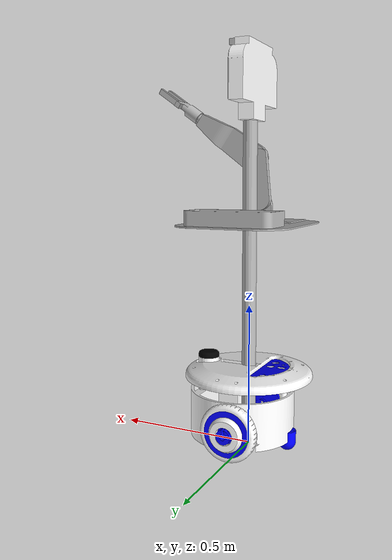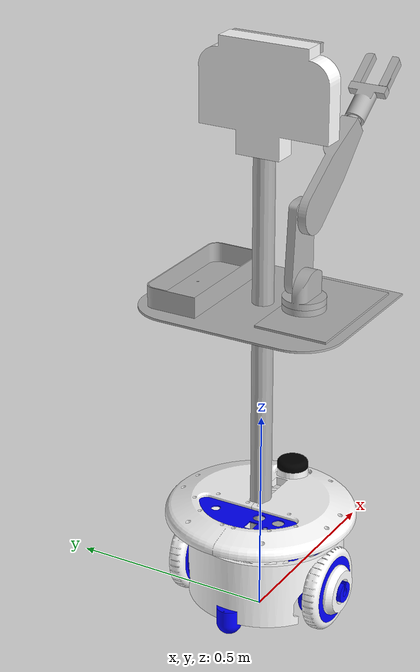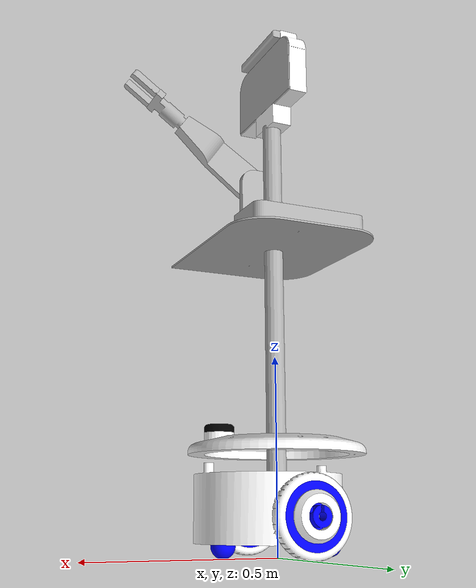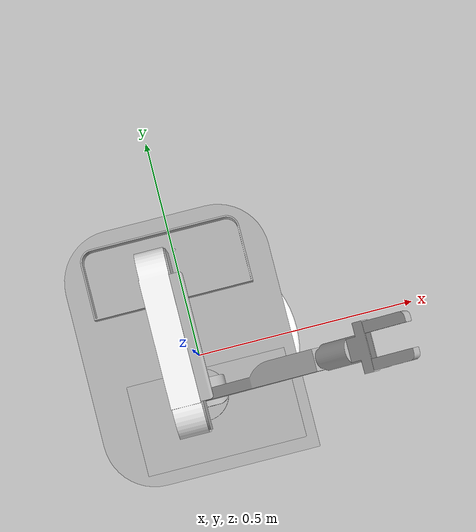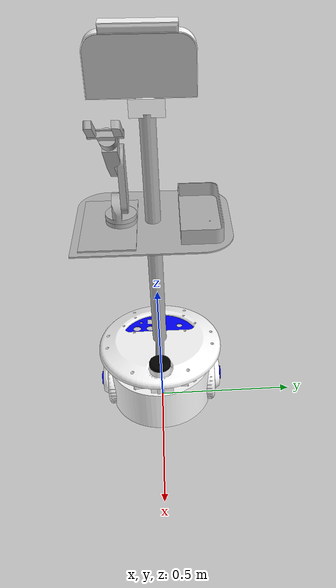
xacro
<?xml version="1.0" ?>
<robot name="robocare" xmlns:xacro="http://www.ros.org/wiki/xacro" >

<xacro:include filename="$(find robocare_description)/urdf/materials.xacro" />

<xacro:include filename="$(find robocare_description)/gazebo/robocare_detailed_materials.gazebo" />
<xacro:include filename="$(find robocare_description)/gazebo/robocare_detailed_physics.gazebo"/>
<xacro:include filename="$(find robocare_description)/gazebo/robocare_detailed_plugins.gazebo" />

<link name="base_link">
  <inertial>
    <origin rpy="0 0 0" xyz="0.008717050480319273 0.0013081620436010979 0.15115173825671988"/>
    <mass value="15.428530536945836"/>
    <inertia ixx="0.257115" ixy="0.001043" ixz="-0.003282" iyy="0.342385" iyz="-0.001055" izz="0.481029"/>
  </inertial>
  <visual>
    <origin rpy="0 0 0" xyz="0 0 0"/>
    <geometry>
      <mesh filename="package://rur_detailed_description/meshes/base_link.stl" scale="0.001 0.001 0.001"/>
    </geometry>
    <material name="white"/>
  </visual>
  <collision>
    <origin rpy="0 0 0" xyz="0 0 0"/>
    <geometry>
      <mesh filename="package://rur_detailed_description/meshes/base_link.stl" scale="0.001 0.001 0.001"/>
    </geometry>
  </collision>
</link>

<link name="right_wheel">
  <inertial>
    <origin rpy="0 0 0" xyz="-1.828063402709465e-05 0.05312247246161367 0.0002521115303902449"/>
    <mass value="9.856921104469992"/>
    <inertia ixx="0.020599" ixy="-7e-06" ixz="2e-06" iyy="0.03491" iyz="-2.8e-05" izz="0.020606"/>
  </inertial>
  <visual>
    <origin rpy="0 0 0" xyz="-0.0 0.227 -0.099839"/>
    <geometry>
      <mesh filename="package://rur_detailed_description/meshes/right_wheel.stl" scale="0.001 0.001 0.001"/>
    </geometry>
    <material name="blue"/>
  </visual>
  <collision>
    <origin rpy="0 0 0" xyz="-0.0 0.227 -0.099839"/>
    <geometry>
      <mesh filename="package://rur_detailed_description/meshes/right_wheel.stl" scale="0.001 0.001 0.001"/>
    </geometry>
  </collision>
</link>

<link name="left_wheel">
  <inertial>
    <origin rpy="0 0 0" xyz="-1.8254554994090065e-05 -0.0531169103077688 0.0002522130405125389"/>
    <mass value="9.871217353742987"/>
    <inertia ixx="0.020624" ixy="7e-06" ixz="2e-06" iyy="0.034948" iyz="2.8e-05" izz="0.020631"/>
  </inertial>
  <visual>
    <origin rpy="0 0 0" xyz="0.0 -0.227 -0.099839"/>
    <geometry>
      <mesh filename="package://rur_detailed_description/meshes/left_wheel.stl" scale="0.001 0.001 0.001"/>
    </geometry>
    <material name="blue"/>
  </visual>
  <collision>
    <origin rpy="0 0 0" xyz="0.0 -0.227 -0.099839"/>
    <geometry>
      <mesh filename="package://rur_detailed_description/meshes/left_wheel.stl" scale="0.001 0.001 0.001"/>
    </geometry>
  </collision>
</link>

<link name="right_tyre">
  <inertial>
    <origin rpy="0 0 0" xyz="-5.919068486634321e-08 0.011578960710706687 0.00016105311301901903"/>
    <mass value="4.766678644162142"/>
    <inertia ixx="0.012277" ixy="-0.0" ixz="0.0" iyy="0.022304" iyz="-0.0" izz="0.012277"/>
  </inertial>
  <visual>
    <origin rpy="0 0 0" xyz="-0.0 0.2 -0.1"/>
    <geometry>
      <mesh filename="package://rur_detailed_description/meshes/right_tyre.stl" scale="0.001 0.001 0.001"/>
    </geometry>
    <material name="white"/>
  </visual>
  <collision>
    <origin rpy="0 0 0" xyz="-0.0 0.2 -0.1"/>
    <geometry>
      <mesh filename="package://rur_detailed_description/meshes/right_tyre.stl" scale="0.001 0.001 0.001"/>
    </geometry>
  </collision>
</link>

<link name="left_tyre">
  <inertial>
    <origin rpy="0 0 0" xyz="9.30327782468428e-09 -0.011578963887744514 0.000161051324790773"/>
    <mass value="4.766678875971219"/>
    <inertia ixx="0.012277" ixy="0.0" ixz="-0.0" iyy="0.022304" iyz="0.0" izz="0.012277"/>
  </inertial>
  <visual>
    <origin rpy="0 0 0" xyz="0.0 -0.2 -0.1"/>
    <geometry>
      <mesh filename="package://rur_detailed_description/meshes/left_tyre.stl" scale="0.001 0.001 0.001"/>
    </geometry>
    <material name="white"/>
  </visual>
  <collision>
    <origin rpy="0 0 0" xyz="0.0 -0.2 -0.1"/>
    <geometry>
      <mesh filename="package://rur_detailed_description/meshes/left_tyre.stl" scale="0.001 0.001 0.001"/>
    </geometry>
  </collision>
</link>

<link name="front_caster">
  <inertial>
    <origin rpy="0 0 0" xyz="-0.025000797505036393 -2.9865544783409456e-16 -0.030208086053412367"/>
    <mass value="0.4573656248802168"/>
    <inertia ixx="0.000244" ixy="-0.0" ixz="0.0" iyy="0.000244" iyz="0.0" izz="0.000192"/>
  </inertial>
  <visual>
    <origin rpy="0 0 0" xyz="-0.172 -0.0 -0.07"/>
    <geometry>
      <mesh filename="package://rur_detailed_description/meshes/front_caster.stl" scale="0.001 0.001 0.001"/>
    </geometry>
    <material name="blue"/>
  </visual>
  <collision>
    <origin rpy="0 0 0" xyz="-0.172 -0.0 -0.07"/>
    <geometry>
      <mesh filename="package://rur_detailed_description/meshes/front_caster.stl" scale="0.001 0.001 0.001"/>
    </geometry>
  </collision>
</link>

<link name="back_caster">
  <inertial>
    <origin rpy="0 0 0" xyz="0.024999202494963513 -3.2214520215812444e-16 -0.030208086053412374"/>
    <mass value="0.4573656248802169"/>
    <inertia ixx="0.000244" ixy="-0.0" ixz="0.0" iyy="0.000244" iyz="0.0" izz="0.000192"/>
  </inertial>
  <visual>
    <origin rpy="0 0 0" xyz="0.172 0.0 -0.07"/>
    <geometry>
      <mesh filename="package://rur_detailed_description/meshes/back_caster.stl" scale="0.001 0.001 0.001"/>
    </geometry>
    <material name="blue"/>
  </visual>
  <collision>
    <origin rpy="0 0 0" xyz="0.172 0.0 -0.07"/>
    <geometry>
      <mesh filename="package://rur_detailed_description/meshes/back_caster.stl" scale="0.001 0.001 0.001"/>
    </geometry>
  </collision>
</link>

<link name="lid">
  <inertial>
    <origin rpy="0 0 0" xyz="-0.20973058370001274 -0.0002000297507654507 0.021779111268977636"/>
    <mass value="18.187373287828525"/>
    <inertia ixx="0.290093" ixy="0.0" ixz="-0.003295" iyy="0.300261" iyz="0.0" izz="0.584949"/>
  </inertial>
  <visual>
    <origin rpy="0 0 0" xyz="-0.225 -0.0002 -0.25"/>
    <geometry>
      <mesh filename="package://rur_detailed_description/meshes/lid.stl" scale="0.001 0.001 0.001"/>
    </geometry>
    <material name="white"/>
  </visual>
  <collision>
    <origin rpy="0 0 0" xyz="-0.225 -0.0002 -0.25"/>
    <geometry>
      <mesh filename="package://rur_detailed_description/meshes/lid.stl" scale="0.001 0.001 0.001"/>
    </geometry>
  </collision>
</link>

<link name="lidar">
  <inertial>
    <origin rpy="0 0 0" xyz="-2.3483549826952554e-09 -3.4770506128023716e-07 0.009561590682608923"/>
    <mass value="0.0886181648250366"/>
    <inertia ixx="3.3e-05" ixy="0.0" ixz="0.0" iyy="3.3e-05" iyz="0.0" izz="6e-05"/>
  </inertial>
  <visual>
    <origin rpy="0 0 0" xyz="-0.1575 0.0 -0.3"/>
    <geometry>
      <mesh filename="package://rur_detailed_description/meshes/lidar.stl" scale="0.001 0.001 0.001"/>
    </geometry>
    <material name="black"/>
  </visual>
  <collision>
    <origin rpy="0 0 0" xyz="-0.1575 0.0 -0.3"/>
    <geometry>
      <mesh filename="package://rur_detailed_description/meshes/lidar.stl" scale="0.001 0.001 0.001"/>
    </geometry>
  </collision>
</link>

<link name="electronics_lid">
  <inertial>
    <origin rpy="0 0 0" xyz="-0.0511574994774171 -0.011997734212864706 -0.0015000000000000568"/>
    <mass value="0.633989646973267"/>
    <inertia ixx="0.003384" ixy="-9e-06" ixz="-0.0" iyy="0.000771" iyz="0.0" izz="0.004153"/>
  </inertial>
  <visual>
    <origin rpy="0 0 0" xyz="0.035 -0.015 -0.28"/>
    <geometry>
      <mesh filename="package://rur_detailed_description/meshes/electronics_lid.stl" scale="0.001 0.001 0.001"/>
    </geometry>
    <material name="blue"/>
  </visual>
  <collision>
    <origin rpy="0 0 0" xyz="0.035 -0.015 -0.28"/>
    <geometry>
      <mesh filename="package://rur_detailed_description/meshes/electronics_lid.stl" scale="0.001 0.001 0.001"/>
    </geometry>
  </collision>
</link>

<link name="long_bar">
  <inertial>
    <origin rpy="0 0 0" xyz="0.03584192761999582 0.003225175684225926 0.4595434632519135"/>
    <mass value="7.553317644619513"/>
    <inertia ixx="1.13396" ixy="-0.000125" ixz="-0.002615" iyy="1.139907" iyz="-0.018664" izz="0.009557"/>
  </inertial>
  <visual>
    <origin rpy="0 0 0" xyz="-0.015 -0.0 -0.291"/>
    <geometry>
      <mesh filename="package://robocare_description/meshes/long_bar_1.stl" scale="0.001 0.001 0.001"/>
    </geometry>
    <material name="silver"/>
  </visual>
  <collision>
    <origin rpy="0 0 0" xyz="-0.015 -0.0 -0.291"/>
    <geometry>
      <mesh filename="package://robocare_description/meshes/long_bar_1.stl" scale="0.001 0.001 0.001"/>
    </geometry>
  </collision>
</link>

<link name="head">
  <inertial>
    <origin rpy="0 0 0" xyz="-0.007139140620123164 -0.007663979943047888 0.09632764443509445"/>
    <mass value="0.7099152010145662"/>
    <inertia ixx="0.008756" ixy="-2.3e-05" ixz="0.000266" iyy="0.005173" iyz="0.0003" izz="0.004006"/>
  </inertial>
  <visual>
    <origin rpy="0 0 0" xyz="-0.0 -0.0 -1.101"/>
    <geometry>
      <mesh filename="package://robocare_description/meshes/monitor_1.stl" scale="0.001 0.001 0.001"/>
    </geometry>
    <material name="white"/>
  </visual>
  <collision>
    <origin rpy="0 0 0" xyz="-0.0 -0.0 -1.101"/>
    <geometry>
      <mesh filename="package://robocare_description/meshes/monitor_1.stl" scale="0.001 0.001 0.001"/>
    </geometry>
  </collision>
</link>

<link name="screen_1">
  <inertial>
    <origin rpy="0 0 0" xyz="0.002500000000001116 -4.6672532337185824e-07 -0.0013618913330846194"/>
    <mass value="0.5735007514761783"/>
    <inertia ixx="0.005873" ixy="0.0" ixz="0.0" iyy="0.001382" iyz="0.0" izz="0.004493"/>
  </inertial>
  <visual>
    <origin rpy="0 0 0" xyz="-0.0205 0.01177 -1.245074"/>
    <geometry>
      <mesh filename="package://robocare_description/meshes/screen_1.stl" scale="0.001 0.001 0.001"/>
    </geometry>
    <material name="silver"/>
  </visual>
  <collision>
    <origin rpy="0 0 0" xyz="-0.0205 0.01177 -1.245074"/>
    <geometry>
      <mesh filename="package://robocare_description/meshes/screen_1.stl" scale="0.001 0.001 0.001"/>
    </geometry>
  </collision>
</link>

<link name="realsense_1">
  <inertial>
    <origin rpy="0 0 0" xyz="0.03473144841772651 -4.6672532325563176e-07 -5.483436593678448e-08"/>
    <mass value="0.329509187958012"/>
    <inertia ixx="0.001258" ixy="-0.0" ixz="-0.0" iyy="0.000145" iyz="0.0" izz="0.001379"/>
  </inertial>
  <visual>
    <origin rpy="0 0 0" xyz="0.0255 0.01177 -1.346648"/>
    <geometry>
      <mesh filename="package://robocare_description/meshes/realsense_1.stl" scale="0.001 0.001 0.001"/>
    </geometry>
    <material name="silver"/>
  </visual>
  <collision>
    <origin rpy="0 0 0" xyz="0.0255 0.01177 -1.346648"/>
    <geometry>
      <mesh filename="package://robocare_description/meshes/realsense_1.stl" scale="0.001 0.001 0.001"/>
    </geometry>
  </collision>
</link>

<link name="basket_base_1">
  <inertial>
    <origin rpy="0 0 0" xyz="0.0019871258520150767 -0.002554436894952264 -0.0025000000000000577"/>
    <mass value="1.0153968550242205"/>
    <inertia ixx="0.020291" ixy="0.000453" ixz="0.0" iyy="0.013041" iyz="-0.0" izz="0.033328"/>
  </inertial>
  <visual>
    <origin rpy="0 0 0" xyz="-0.0 -0.0 -0.751"/>
    <geometry>
      <mesh filename="package://robocare_description/meshes/basket_base_1.stl" scale="0.001 0.001 0.001"/>
    </geometry>
    <material name="silver"/>
  </visual>
  <collision>
    <origin rpy="0 0 0" xyz="-0.0 -0.0 -0.751"/>
    <geometry>
      <mesh filename="package://robocare_description/meshes/basket_base_1.stl" scale="0.001 0.001 0.001"/>
    </geometry>
  </collision>
</link>

<link name="basket_1">
  <inertial>
    <origin rpy="0 0 0" xyz="-0.02569651564632526 -0.03166906721561094 0.013881994676189224"/>
    <mass value="0.25701991747417935"/>
    <inertia ixx="0.000679" ixy="0.0" ixz="-0.0" iyy="0.002633" iyz="2e-06" izz="0.003185"/>
  </inertial>
  <visual>
    <origin rpy="0 0 0" xyz="-0.024692 -0.182461 -0.751"/>
    <geometry>
      <mesh filename="package://robocare_description/meshes/basket_1.stl" scale="0.001 0.001 0.001"/>
    </geometry>
    <material name="silver"/>
  </visual>
  <collision>
    <origin rpy="0 0 0" xyz="-0.024692 -0.182461 -0.751"/>
    <geometry>
      <mesh filename="package://robocare_description/meshes/basket_1.stl" scale="0.001 0.001 0.001"/>
    </geometry>
  </collision>
</link>

<link name="base_arm">
  <inertial>
    <origin rpy="0 0 0" xyz="0.012076123028712391 -0.12586947160678996 0.8067467349089783"/>
    <mass value="0.41662835740019055"/>
    <inertia ixx="0.000951" ixy="5.9e-05" ixz="1.6e-05" iyy="0.002422" iyz="-3.5e-05" izz="0.003345"/>
  </inertial>
  <visual>
    <origin rpy="0 0 0" xyz="0 0 0"/>
    <geometry>
      <mesh filename="package://rocare_arm_description/meshes/base_link.stl" scale="0.001 0.001 0.001"/>
    </geometry>
    <material name="silver"/>
  </visual>
  <collision>
    <origin rpy="0 0 0" xyz="0 0 0"/>
    <geometry>
      <mesh filename="package://rocare_arm_description/meshes/base_link.stl" scale="0.001 0.001 0.001"/>
    </geometry>
  </collision>
</link>

<link name="musc_1">
  <inertial>
    <origin rpy="0 0 0" xyz="0.0024528563193816997 0.029369279373445967 0.06944957584162426"/>
    <mass value="0.4042358344706466"/>
    <inertia ixx="0.001441" ixy="-1e-06" ixz="-3.2e-05" iyy="0.001691" iyz="-2.2e-05" izz="0.000289"/>
  </inertial>
  <visual>
    <origin rpy="0 0 0" xyz="-0.0 0.115 -0.875"/>
    <geometry>
      <mesh filename="package://rocare_arm_description/meshes/musc_1.stl" scale="0.001 0.001 0.001"/>
    </geometry>
    <material name="silver"/>
  </visual>
  <collision>
    <origin rpy="0 0 0" xyz="-0.0 0.115 -0.875"/>
    <geometry>
      <mesh filename="package://rocare_arm_description/meshes/musc_1.stl" scale="0.001 0.001 0.001"/>
    </geometry>
  </collision>
</link>

<link name="elbow_1">
  <inertial>
    <origin rpy="0 0 0" xyz="0.08009117340560826 -0.021060582174940265 0.05552393460555938"/>
    <mass value="0.5803793457847506"/>
    <inertia ixx="0.001567" ixy="-0.000142" ixz="-0.001657" iyy="0.004276" iyz="-9.7e-05" izz="0.002836"/>
  </inertial>
  <visual>
    <origin rpy="0 0 0" xyz="-0.019636 0.08 -1.027721"/>
    <geometry>
      <mesh filename="package://rocare_arm_description/meshes/elbow_1.stl" scale="0.001 0.001 0.001"/>
    </geometry>
    <material name="silver"/>
  </visual>
  <collision>
    <origin rpy="0 0 0" xyz="-0.019636 0.08 -1.027721"/>
    <geometry>
      <mesh filename="package://rocare_arm_description/meshes/elbow_1.stl" scale="0.001 0.001 0.001"/>
    </geometry>
  </collision>
</link>

<link name="finger_base_1">
  <inertial>
    <origin rpy="0 0 0" xyz="0.049311396595673795 0.000188260685575245 0.03334167139941013"/>
    <mass value="0.16857406840931222"/>
    <inertia ixx="9.8e-05" ixy="-0.0" ixz="-6.7e-05" iyy="0.000179" iyz="-0.0" izz="0.000146"/>
  </inertial>
  <visual>
    <origin rpy="0 0 0" xyz="-0.208384 0.095 -1.159155"/>
    <geometry>
      <mesh filename="package://rocare_arm_description/meshes/finger_base_1.stl" scale="0.001 0.001 0.001"/>
    </geometry>
    <material name="silver"/>
  </visual>
  <collision>
    <origin rpy="0 0 0" xyz="-0.208384 0.095 -1.159155"/>
    <geometry>
      <mesh filename="package://rocare_arm_description/meshes/finger_base_1.stl" scale="0.001 0.001 0.001"/>
    </geometry>
  </collision>
</link>

<link name="base_join_1">
  <inertial>
    <origin rpy="0 0 0" xyz="0.0001155028239109162 -0.005551813783454498 0.02664591074817846"/>
    <mass value="0.26898918626746976"/>
    <inertia ixx="0.000222" ixy="0.0" ixz="-0.0" iyy="0.000307" iyz="2.5e-05" izz="0.000276"/>
  </inertial>
  <visual>
    <origin rpy="0 0 0" xyz="-0.0 0.1 -0.821"/>
    <geometry>
      <mesh filename="package://rocare_arm_description/meshes/base_join_1.stl" scale="0.001 0.001 0.001"/>
    </geometry>
    <material name="silver"/>
  </visual>
  <collision>
    <origin rpy="0 0 0" xyz="-0.0 0.1 -0.821"/>
    <geometry>
      <mesh filename="package://rocare_arm_description/meshes/base_join_1.stl" scale="0.001 0.001 0.001"/>
    </geometry>
  </collision>
</link>

<link name="fin2_1">
  <inertial>
    <origin rpy="0 0 0" xyz="0.041466495640240186 -0.0002233898388563499 0.029226992517715544"/>
    <mass value="0.10326498679959267"/>
    <inertia ixx="3.2e-05" ixy="0.0" ixz="-3.7e-05" iyy="8.4e-05" iyz="0.0" izz="5.9e-05"/>
  </inertial>
  <visual>
    <origin rpy="0 0 0" xyz="-0.298558 0.062277 -1.222152"/>
    <geometry>
      <mesh filename="package://rocare_arm_description/meshes/fin2_1.stl" scale="0.001 0.001 0.001"/>
    </geometry>
    <material name="silver"/>
  </visual>
  <collision>
    <origin rpy="0 0 0" xyz="-0.298558 0.062277 -1.222152"/>
    <geometry>
      <mesh filename="package://rocare_arm_description/meshes/fin2_1.stl" scale="0.001 0.001 0.001"/>
    </geometry>
  </collision>
</link>

<link name="fin1_1">
  <inertial>
    <origin rpy="0 0 0" xyz="0.04142839202311416 0.0004252007549860881 0.029635179606995132"/>
    <mass value="0.10392012536514646"/>
    <inertia ixx="3.3e-05" ixy="-1e-06" ixz="-3.7e-05" iyy="8.5e-05" iyz="-0.0" izz="5.9e-05"/>
  </inertial>
  <visual>
    <origin rpy="0 0 0" xyz="-0.298558 0.12794 -1.222152"/>
    <geometry>
      <mesh filename="package://rocare_arm_description/meshes/fin1_1.stl" scale="0.001 0.001 0.001"/>
    </geometry>
    <material name="silver"/>
  </visual>
  <collision>
    <origin rpy="0 0 0" xyz="-0.298558 0.12794 -1.222152"/>
    <geometry>
      <mesh filename="package://rocare_arm_description/meshes/fin1_1.stl" scale="0.001 0.001 0.001"/>
    </geometry>
  </collision>
</link>

<joint name="motor_right" type="continuous">
  <origin rpy="0 0 0" xyz="0.0 -0.227 0.099839"/>
  <parent link="base_link"/>
  <child link="right_wheel"/>
  <axis xyz="0.0 1.0 0.0"/>
</joint>

<joint name="motor_left" type="continuous">
  <origin rpy="0 0 0" xyz="0.0 0.227 0.099839"/>
  <parent link="base_link"/>
  <child link="left_wheel"/>
  <axis xyz="0.0 1.0 0.0"/>
</joint>

<joint name="Rigid3" type="fixed">
  <origin rpy="0 0 0" xyz="0.0 0.027 0.000161"/>
  <parent link="right_wheel"/>
  <child link="right_tyre"/>
</joint>

<joint name="Rigid4" type="fixed">
  <origin rpy="0 0 0" xyz="0.0 -0.027 0.000161"/>
  <parent link="left_wheel"/>
  <child link="left_tyre"/>
</joint>

<joint name="Rigid5" type="fixed">
  <origin rpy="0 0 0" xyz="0.172 0.0 0.07"/>
  <parent link="base_link"/>
  <child link="front_caster"/>
</joint>

<joint name="Rigid6" type="fixed">
  <origin rpy="0 0 0" xyz="-0.172 0.0 0.07"/>
  <parent link="base_link"/>
  <child link="back_caster"/>
</joint>

<joint name="Rigid7" type="fixed">
  <origin rpy="0 0 0" xyz="0.225 0.0002 0.25"/>
  <parent link="base_link"/>
  <child link="lid"/>
</joint>

<joint name="Rigid8" type="fixed">
  <origin rpy="0 0 0" xyz="-0.0675 -0.0002 0.05"/>
  <parent link="lid"/>
  <child link="lidar"/>
</joint>

<joint name="Rigid9" type="fixed">
  <origin rpy="0 0 0" xyz="-0.26 0.0148 0.03"/>
  <parent link="lid"/>
  <child link="electronics_lid"/>
</joint>

<joint name="Rigid10" type="fixed">
  <origin rpy="0 0 0" xyz="-0.21 -0.0002 0.041"/>
  <parent link="lid"/>
  <child link="long_bar"/>
</joint>

<joint name="slider" type="fixed">
  <origin rpy="0 0 0" xyz="-0.020 0.0 0.85"/>
  <parent link="long_bar"/>
  <child link="head"/>
</joint>

<joint name="newscr" type="fixed">
  <origin rpy="0 0 0" xyz="0.0205 -0.01177 0.144074"/>
  <parent link="head"/>
  <child link="screen_1"/>
</joint>
<joint name="sence" type="fixed">
  <origin rpy="0 0 0" xyz="-0.0255 -0.01177 0.245648"/>
  <parent link="head"/>
  <child link="realsense_1"/>
</joint>

<joint name="baskbase" type="fixed">
  <origin rpy="0 0 0" xyz="-0.015 0.0 0.5"/>
  <parent link="long_bar"/>
  <child link="basket_base_1"/>
</joint>

<joint name="bbase2" type="fixed">
  <origin rpy="0 0 0" xyz="0.024692 0.182461 0.0"/>
  <parent link="basket_base_1"/>
  <child link="basket_1"/>
</joint>

<joint name="bbase3" type="fixed">
  <origin rpy="0 0 0" xyz="0.006653 -0.000667 -0.801001"/>
  <parent link="basket_base_1"/>
  <child link="base_arm"/>
</joint>

<joint name="musc_rev" type="revolute">
  <origin rpy="0 0 0" xyz="0.0 -0.015 0.054"/>
  <parent link="base_join_1"/>
  <child link="musc_1"/>
  <axis xyz="0.0 -1.0 0.0"/>
  <limit effort="100" lower="-1.570864" upper="0.0" velocity="100"/>
</joint>

<joint name="elb_rev" type="revolute">
  <origin rpy="0 0 0" xyz="0.019636 0.035 0.152721"/>
  <parent link="musc_1"/>
  <child link="elbow_1"/>
  <axis xyz="0.0 1.0 0.0"/>
  <limit effort="100" lower="-1.0472" upper="1.39626" velocity="100"/>
</joint>

<joint name="fin_rev" type="revolute">
  <origin rpy="0 0 0" xyz="0.188748 -0.015 0.131434"/>
  <parent link="elbow_1"/>
  <child link="finger_base_1"/>
  <axis xyz="0.819152 0.0 0.573576"/>
  <limit effort="100" lower="0.0" upper="1.570885" velocity="100"/>
</joint>

<joint name="bas_rev" type="revolute">
  <origin rpy="0 0 0" xyz="0.0 -0.1 0.821"/>
  <parent link="base_arm"/>
  <child link="base_join_1"/>
  <axis xyz="0.0 0.0 1.0"/>
  <limit effort="100" lower="-3.141593" upper="0.0" velocity="100"/>
</joint>

<joint name="fintI_slider" type="prismatic">
  <origin rpy="0 0 0" xyz="0.090174 0.032723 0.062997"/>
  <parent link="finger_base_1"/>
  <child link="fin2_1"/>
  <axis xyz="0.0 1.0 0.0"/>
  <limit effort="100" lower="-0.025" upper="0.0" velocity="100"/>
</joint>

<joint name="fino_Slider" type="prismatic">
  <origin rpy="0 0 0" xyz="0.090174 -0.03294 0.062997"/>
  <parent link="finger_base_1"/>
  <child link="fin1_1"/>
  <axis xyz="0.0 -1.0 0.0"/>
  <limit effort="100" lower="-0.025" upper="0.0" velocity="100"/>
</joint>

</robot>

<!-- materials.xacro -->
<robot name="robocare" xmlns:xacro="http://www.ros.org/wiki/xacro" >

<material name="silver">
  <color rgba="0.700 0.700 0.700 1.000"/>
</material>

<material name="white">
  <color rgba="01.00 01.00 01.00 1.000"/>
</material>

<material name="blue">
  <color rgba="00.00 00.00 01.00 1.000"/>
</material>

<material name="black">
  <color rgba="00.00 00.00 00.00 1.000"/>
</material>

<material name="grey">
  <color rgba="00.40 00.40 00.40 1.000"/>
</material>

</robot>

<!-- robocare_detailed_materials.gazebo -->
<robot name="robocare" xmlns:xacro="http://www.ros.org/wiki/xacro" >

<xacro:property name="body_color" value="Gazebo/PurpleGlow" />
<xacro:property name="tg_color" value="Gazebo/PurpleGlow"/>
<xacro:property name="white" value="Gazebo/WhiteGlow" />
<xacro:property name="screen" value="Gazebo/Black" />
<xacro:property name="blue" value="Gazebo/Blue" />
<xacro:property name="white_c" value="Gazebo/White" />
<xacro:property name="r_color" value="Gazebo/RedGlow" />
<xacro:property name="b_color" value="Gazebo/BlueTransparentOverlay" />
<xacro:property name="rt_color" value="Gazebo/Red" />
<xacro:property name="darkblue" value="Gazebo/BlueLaser" />
<xacro:property name="basket" value="Gazebo/CloudySky" />

<gazebo reference="base_link">
  <material>${blue}</material>
</gazebo>

<gazebo reference="right_wheel">
  <material>${white}</material>
</gazebo>

<gazebo reference="left_wheel">
  <material>${white}</material>
</gazebo>

<gazebo reference="right_tyre">
  <material>${rt_color}</material>
</gazebo>
<gazebo reference="left_tyre">
  <material>${rt_color}</material>
</gazebo>

<gazebo reference="front_caster">
  <material>${blue}</material>
</gazebo>

<gazebo reference="back_caster">
  <material>${blue}</material>
</gazebo>

<gazebo reference="long_bar">
  <material>${white}</material>
</gazebo>

<gazebo reference="head">
  <material>${blue}</material>
</gazebo>

<gazebo reference="lid">
  <material>${r_color}</material>
</gazebo>

<gazebo reference="basket_base_1">
  <material>${blue}</material>
</gazebo>

<gazebo reference="electronics_lid">
  <material>${body_color}</material>
</gazebo>

<gazebo reference="lidar">
  <material>${body_color}</material>
</gazebo>

<gazebo reference="screen_1">
  <material>${basket}</material>
</gazebo>

<gazebo reference="realsense_1">
  <material>${b_color}</material>
</gazebo>

<gazebo reference="basket_1">
  <material>${darkblue}</material>
</gazebo>

<gazebo reference="arm_base_1">
  <material>${white_c}</material>
</gazebo>

<gazebo reference="head">
  <material>${blue}</material>
</gazebo>

<gazebo reference="base_arm">
  <material>${blue}</material>
</gazebo>
<gazebo reference="musc_1">
  <material>${blue}</material>
</gazebo>
<gazebo reference="elbow_1">
  <material>${blue}</material>
</gazebo>
<gazebo reference="finger_base_1">
  <material>${r_color}</material>
</gazebo>
<gazebo reference="fin2_1">
  <material>${white}</material>
</gazebo>

<gazebo reference="fin1_1">
  <material>${white}</material>
</gazebo>
<gazebo reference="base_join_1">
  <material>${white}</material>
</gazebo>

</robot>
